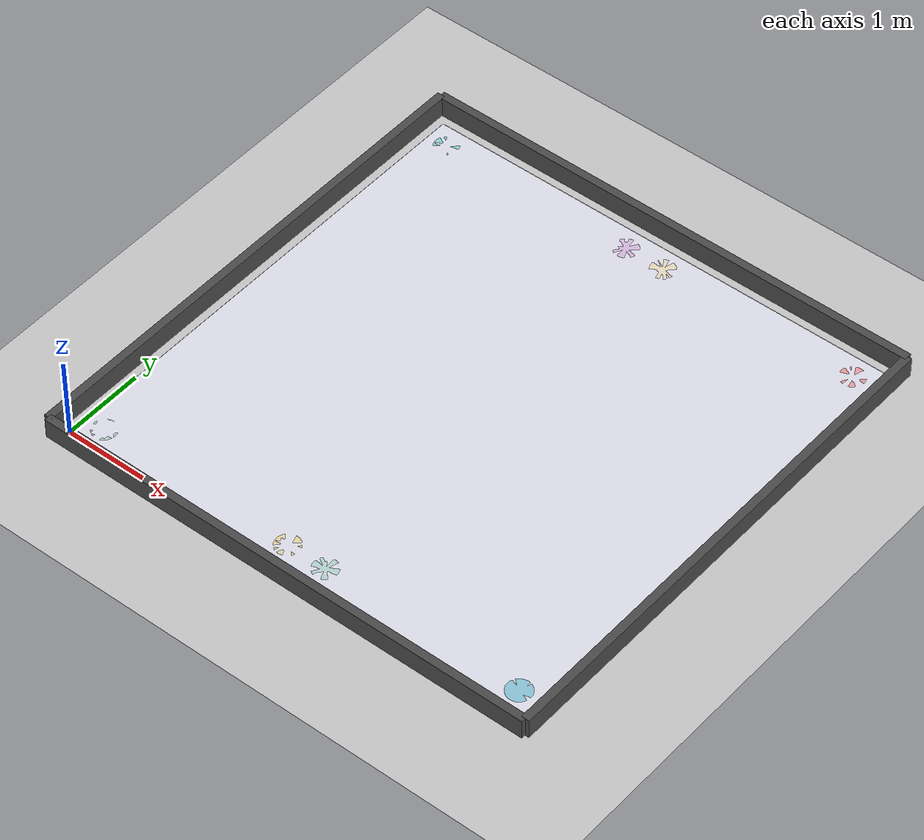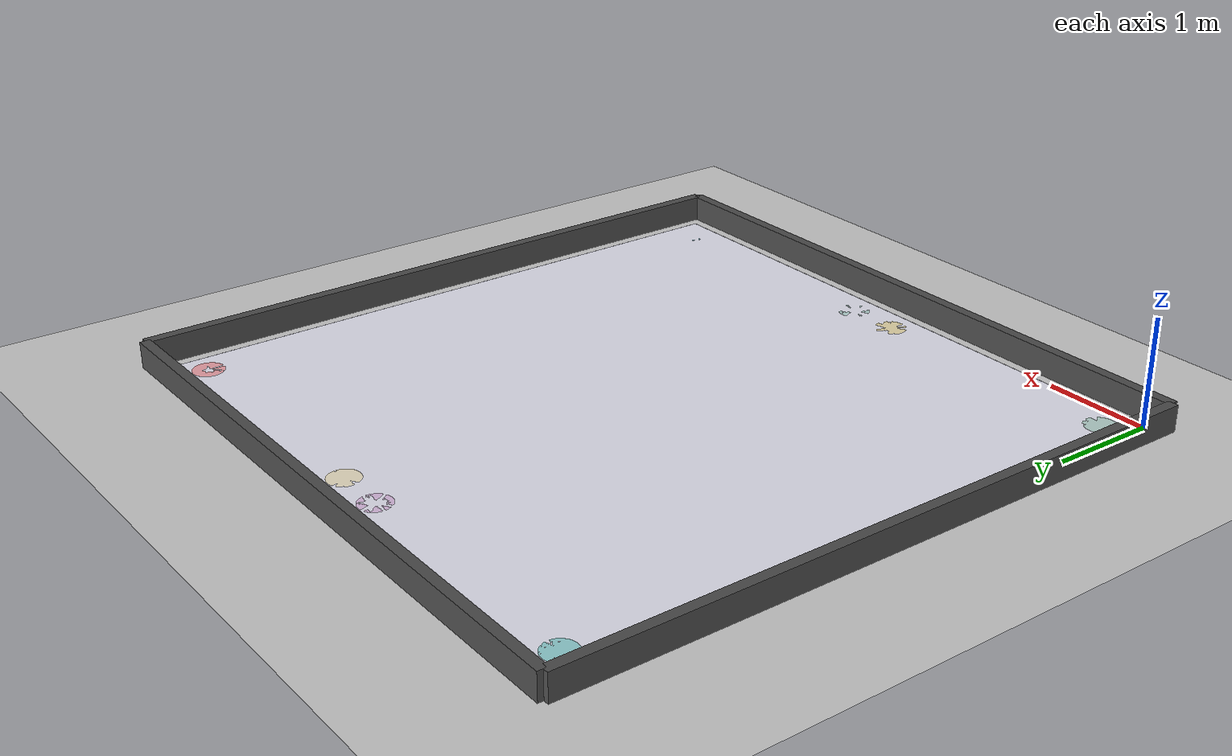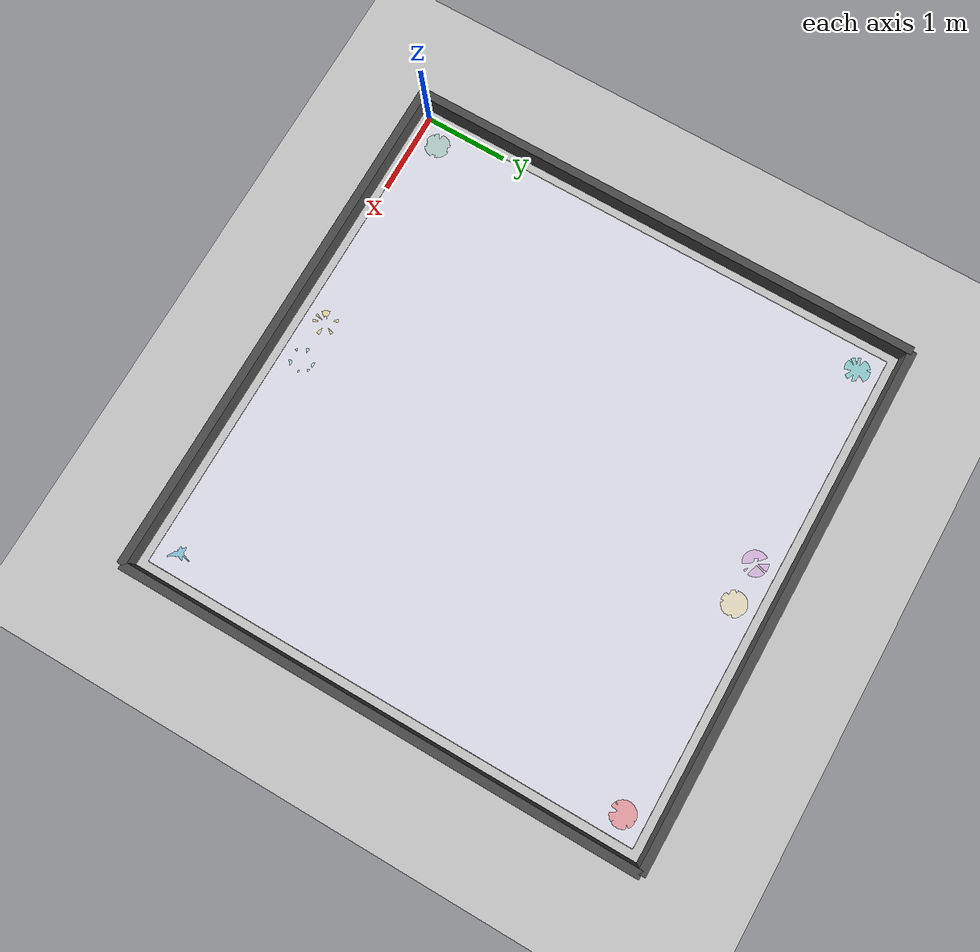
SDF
<?xml version="1.0"?>
<sdf version="1.6">
  <world name="mapf_grid_12x12">

    <!-- Physics -->
    <physics type="ode">
      <max_step_size>0.001</max_step_size>
      <real_time_factor>1</real_time_factor>
      <real_time_update_rate>1000</real_time_update_rate>
    </physics>

    <!-- Lighting -->
    <include>
      <uri>model://sun</uri>
    </include>

    <!-- Ground Plane -->
    <model name="ground_plane">
      <static>true</static>
      <link name="link">
        <collision name="collision">
          <geometry>
            <plane>
              <normal>0 0 1</normal>
              <size>10 10</size>
            </plane>
          </geometry>
          <surface>
            <friction>
              <ode>
                <mu>100</mu>
                <mu2>50</mu2>
              </ode>
            </friction>
          </surface>
        </collision>
        <visual name="visual">
          <geometry>
            <plane>
              <normal>0 0 1</normal>
              <size>10 10</size>
            </plane>
          </geometry>
          <material>
            <ambient>0.8 0.8 0.8 1</ambient>
            <diffuse>0.8 0.8 0.8 1</diffuse>
          </material>
        </visual>
      </link>
    </model>

    <!-- Grid Floor (12x12 cells, 0.5m each = 6m x 6m) -->
    <model name="grid_floor">
      <static>true</static>
      <pose>3 3 0.001 0 0 0</pose>
      <link name="link">
        <visual name="visual">
          <geometry>
            <plane>
              <normal>0 0 1</normal>
              <size>6 6</size>
            </plane>
          </geometry>
          <material>
            <ambient>0.9 0.9 0.95 1</ambient>
            <diffuse>0.9 0.9 0.95 1</diffuse>
          </material>
        </visual>
      </link>
    </model>

    <!-- Grid Lines (visual markers) -->
    <!-- Vertical lines -->
    <model name="grid_line_v0"><static>true</static><pose>0 3 0.002 0 0 0</pose><link name="link"><visual name="v"><geometry><box><size>0.01 6 0.001</size></box></geometry><material><ambient>0.5 0.5 0.5 1</ambient></material></visual></link></model>
    <model name="grid_line_v1"><static>true</static><pose>0.5 3 0.002 0 0 0</pose><link name="link"><visual name="v"><geometry><box><size>0.01 6 0.001</size></box></geometry><material><ambient>0.7 0.7 0.7 1</ambient></material></visual></link></model>
    <model name="grid_line_v2"><static>true</static><pose>1 3 0.002 0 0 0</pose><link name="link"><visual name="v"><geometry><box><size>0.01 6 0.001</size></box></geometry><material><ambient>0.7 0.7 0.7 1</ambient></material></visual></link></model>
    <model name="grid_line_v3"><static>true</static><pose>1.5 3 0.002 0 0 0</pose><link name="link"><visual name="v"><geometry><box><size>0.01 6 0.001</size></box></geometry><material><ambient>0.7 0.7 0.7 1</ambient></material></visual></link></model>
    <model name="grid_line_v4"><static>true</static><pose>2 3 0.002 0 0 0</pose><link name="link"><visual name="v"><geometry><box><size>0.01 6 0.001</size></box></geometry><material><ambient>0.7 0.7 0.7 1</ambient></material></visual></link></model>
    <model name="grid_line_v5"><static>true</static><pose>2.5 3 0.002 0 0 0</pose><link name="link"><visual name="v"><geometry><box><size>0.01 6 0.001</size></box></geometry><material><ambient>0.7 0.7 0.7 1</ambient></material></visual></link></model>
    <model name="grid_line_v6"><static>true</static><pose>3 3 0.002 0 0 0</pose><link name="link"><visual name="v"><geometry><box><size>0.01 6 0.001</size></box></geometry><material><ambient>0.5 0.5 0.5 1</ambient></material></visual></link></model>
    <model name="grid_line_v7"><static>true</static><pose>3.5 3 0.002 0 0 0</pose><link name="link"><visual name="v"><geometry><box><size>0.01 6 0.001</size></box></geometry><material><ambient>0.7 0.7 0.7 1</ambient></material></visual></link></model>
    <model name="grid_line_v8"><static>true</static><pose>4 3 0.002 0 0 0</pose><link name="link"><visual name="v"><geometry><box><size>0.01 6 0.001</size></box></geometry><material><ambient>0.7 0.7 0.7 1</ambient></material></visual></link></model>
    <model name="grid_line_v9"><static>true</static><pose>4.5 3 0.002 0 0 0</pose><link name="link"><visual name="v"><geometry><box><size>0.01 6 0.001</size></box></geometry><material><ambient>0.7 0.7 0.7 1</ambient></material></visual></link></model>
    <model name="grid_line_v10"><static>true</static><pose>5 3 0.002 0 0 0</pose><link name="link"><visual name="v"><geometry><box><size>0.01 6 0.001</size></box></geometry><material><ambient>0.7 0.7 0.7 1</ambient></material></visual></link></model>
    <model name="grid_line_v11"><static>true</static><pose>5.5 3 0.002 0 0 0</pose><link name="link"><visual name="v"><geometry><box><size>0.01 6 0.001</size></box></geometry><material><ambient>0.7 0.7 0.7 1</ambient></material></visual></link></model>
    <model name="grid_line_v12"><static>true</static><pose>6 3 0.002 0 0 0</pose><link name="link"><visual name="v"><geometry><box><size>0.01 6 0.001</size></box></geometry><material><ambient>0.5 0.5 0.5 1</ambient></material></visual></link></model>

    <!-- Horizontal lines -->
    <model name="grid_line_h0"><static>true</static><pose>3 0 0.002 0 0 0</pose><link name="link"><visual name="v"><geometry><box><size>6 0.01 0.001</size></box></geometry><material><ambient>0.5 0.5 0.5 1</ambient></material></visual></link></model>
    <model name="grid_line_h1"><static>true</static><pose>3 0.5 0.002 0 0 0</pose><link name="link"><visual name="v"><geometry><box><size>6 0.01 0.001</size></box></geometry><material><ambient>0.7 0.7 0.7 1</ambient></material></visual></link></model>
    <model name="grid_line_h2"><static>true</static><pose>3 1 0.002 0 0 0</pose><link name="link"><visual name="v"><geometry><box><size>6 0.01 0.001</size></box></geometry><material><ambient>0.7 0.7 0.7 1</ambient></material></visual></link></model>
    <model name="grid_line_h3"><static>true</static><pose>3 1.5 0.002 0 0 0</pose><link name="link"><visual name="v"><geometry><box><size>6 0.01 0.001</size></box></geometry><material><ambient>0.7 0.7 0.7 1</ambient></material></visual></link></model>
    <model name="grid_line_h4"><static>true</static><pose>3 2 0.002 0 0 0</pose><link name="link"><visual name="v"><geometry><box><size>6 0.01 0.001</size></box></geometry><material><ambient>0.7 0.7 0.7 1</ambient></material></visual></link></model>
    <model name="grid_line_h5"><static>true</static><pose>3 2.5 0.002 0 0 0</pose><link name="link"><visual name="v"><geometry><box><size>6 0.01 0.001</size></box></geometry><material><ambient>0.7 0.7 0.7 1</ambient></material></visual></link></model>
    <model name="grid_line_h6"><static>true</static><pose>3 3 0.002 0 0 0</pose><link name="link"><visual name="v"><geometry><box><size>6 0.01 0.001</size></box></geometry><material><ambient>0.5 0.5 0.5 1</ambient></material></visual></link></model>
    <model name="grid_line_h7"><static>true</static><pose>3 3.5 0.002 0 0 0</pose><link name="link"><visual name="v"><geometry><box><size>6 0.01 0.001</size></box></geometry><material><ambient>0.7 0.7 0.7 1</ambient></material></visual></link></model>
    <model name="grid_line_h8"><static>true</static><pose>3 4 0.002 0 0 0</pose><link name="link"><visual name="v"><geometry><box><size>6 0.01 0.001</size></box></geometry><material><ambient>0.7 0.7 0.7 1</ambient></material></visual></link></model>
    <model name="grid_line_h9"><static>true</static><pose>3 4.5 0.002 0 0 0</pose><link name="link"><visual name="v"><geometry><box><size>6 0.01 0.001</size></box></geometry><material><ambient>0.7 0.7 0.7 1</ambient></material></visual></link></model>
    <model name="grid_line_h10"><static>true</static><pose>3 5 0.002 0 0 0</pose><link name="link"><visual name="v"><geometry><box><size>6 0.01 0.001</size></box></geometry><material><ambient>0.7 0.7 0.7 1</ambient></material></visual></link></model>
    <model name="grid_line_h11"><static>true</static><pose>3 5.5 0.002 0 0 0</pose><link name="link"><visual name="v"><geometry><box><size>6 0.01 0.001</size></box></geometry><material><ambient>0.7 0.7 0.7 1</ambient></material></visual></link></model>
    <model name="grid_line_h12"><static>true</static><pose>3 6 0.002 0 0 0</pose><link name="link"><visual name="v"><geometry><box><size>6 0.01 0.001</size></box></geometry><material><ambient>0.5 0.5 0.5 1</ambient></material></visual></link></model>

    <!-- Goal markers (colored circles on floor) -->
    <!-- Agent 0 goal (11,11) = (5.75, 5.75) - Red -->
    <model name="goal_0"><static>true</static><pose>5.75 5.75 0.003 0 0 0</pose><link name="link"><visual name="v"><geometry><cylinder><radius>0.15</radius><length>0.002</length></cylinder></geometry><material><ambient>1 0.42 0.42 0.5</ambient></material></visual></link></model>

    <!-- Agent 1 goal (0,11) = (0.25, 5.75) - Teal -->
    <model name="goal_1"><static>true</static><pose>0.25 5.75 0.003 0 0 0</pose><link name="link"><visual name="v"><geometry><cylinder><radius>0.15</radius><length>0.002</length></cylinder></geometry><material><ambient>0.31 0.80 0.77 0.5</ambient></material></visual></link></model>

    <!-- Agent 2 goal (11,0) = (5.75, 0.25) - Blue -->
    <model name="goal_2"><static>true</static><pose>5.75 0.25 0.003 0 0 0</pose><link name="link"><visual name="v"><geometry><cylinder><radius>0.15</radius><length>0.002</length></cylinder></geometry><material><ambient>0.27 0.72 0.82 0.5</ambient></material></visual></link></model>

    <!-- Agent 3 goal (0,0) = (0.25, 0.25) - Green -->
    <model name="goal_3"><static>true</static><pose>0.25 0.25 0.003 0 0 0</pose><link name="link"><visual name="v"><geometry><cylinder><radius>0.15</radius><length>0.002</length></cylinder></geometry><material><ambient>0.59 0.81 0.71 0.5</ambient></material></visual></link></model>

    <!-- Agent 4 goal (6,11) = (3.25, 5.75) - Yellow -->
    <model name="goal_4"><static>true</static><pose>3.25 5.75 0.003 0 0 0</pose><link name="link"><visual name="v"><geometry><cylinder><radius>0.15</radius><length>0.002</length></cylinder></geometry><material><ambient>1 0.92 0.65 0.5</ambient></material></visual></link></model>

    <!-- Agent 5 goal (5,11) = (2.75, 5.75) - Plum -->
    <model name="goal_5"><static>true</static><pose>2.75 5.75 0.003 0 0 0</pose><link name="link"><visual name="v"><geometry><cylinder><radius>0.15</radius><length>0.002</length></cylinder></geometry><material><ambient>0.87 0.63 0.87 0.5</ambient></material></visual></link></model>

    <!-- Agent 6 goal (6,0) = (3.25, 0.25) - Mint -->
    <model name="goal_6"><static>true</static><pose>3.25 0.25 0.003 0 0 0</pose><link name="link"><visual name="v"><geometry><cylinder><radius>0.15</radius><length>0.002</length></cylinder></geometry><material><ambient>0.60 0.85 0.78 0.5</ambient></material></visual></link></model>

    <!-- Agent 7 goal (5,0) = (2.75, 0.25) - Gold -->
    <model name="goal_7"><static>true</static><pose>2.75 0.25 0.003 0 0 0</pose><link name="link"><visual name="v"><geometry><cylinder><radius>0.15</radius><length>0.002</length></cylinder></geometry><material><ambient>0.97 0.86 0.44 0.5</ambient></material></visual></link></model>

    <!-- Boundary walls -->
    <model name="wall_north">
      <static>true</static>
      <pose>3 6.15 0.125 0 0 0</pose>
      <link name="link">
        <collision name="collision"><geometry><box><size>6.3 0.1 0.25</size></box></geometry></collision>
        <visual name="visual"><geometry><box><size>6.3 0.1 0.25</size></box></geometry><material><ambient>0.3 0.3 0.3 1</ambient></material></visual>
      </link>
    </model>

    <model name="wall_south">
      <static>true</static>
      <pose>3 -0.15 0.125 0 0 0</pose>
      <link name="link">
        <collision name="collision"><geometry><box><size>6.3 0.1 0.25</size></box></geometry></collision>
        <visual name="visual"><geometry><box><size>6.3 0.1 0.25</size></box></geometry><material><ambient>0.3 0.3 0.3 1</ambient></material></visual>
      </link>
    </model>

    <model name="wall_east">
      <static>true</static>
      <pose>6.15 3 0.125 0 0 0</pose>
      <link name="link">
        <collision name="collision"><geometry><box><size>0.1 6.3 0.25</size></box></geometry></collision>
        <visual name="visual"><geometry><box><size>0.1 6.3 0.25</size></box></geometry><material><ambient>0.3 0.3 0.3 1</ambient></material></visual>
      </link>
    </model>

    <model name="wall_west">
      <static>true</static>
      <pose>-0.15 3 0.125 0 0 0</pose>
      <link name="link">
        <collision name="collision"><geometry><box><size>0.1 6.3 0.25</size></box></geometry></collision>
        <visual name="visual"><geometry><box><size>0.1 6.3 0.25</size></box></geometry><material><ambient>0.3 0.3 0.3 1</ambient></material></visual>
      </link>
    </model>

    <!-- Camera positioned for good view -->
    <gui fullscreen='0'>
      <camera name='user_camera'>
        <pose>3 3 12 0 1.57 1.57</pose>
        <view_controller>orbit</view_controller>
      </camera>
    </gui>

  </world>
</sdf>
